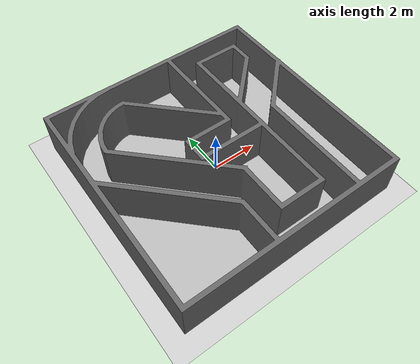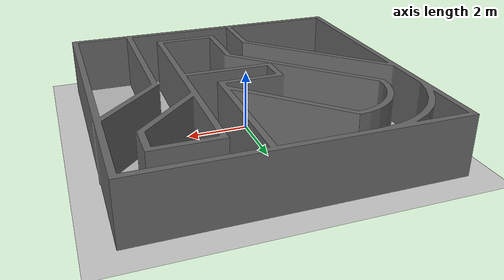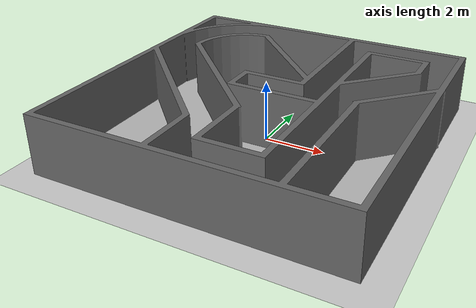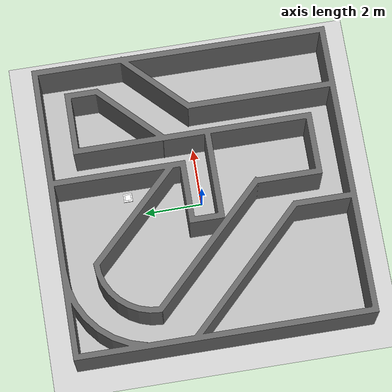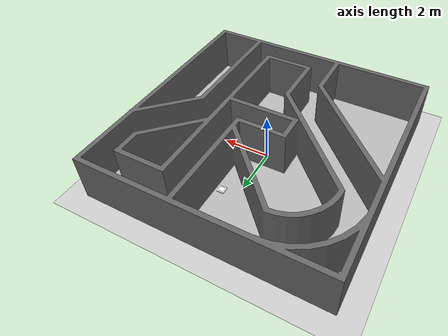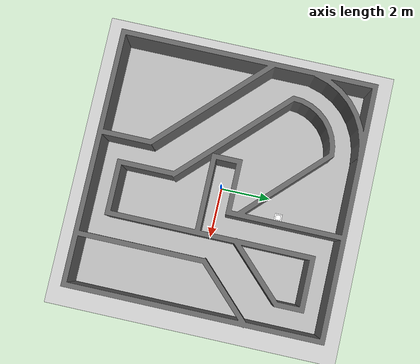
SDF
<?xml version="1.0" ?>

<sdf version="1.8">
  <world name="default">

    <model name="track">
        <static>true</static>

        <link name="black_track">
            <pose>0 0 0 0 0 0</pose>
            <collision name="collision">
            <geometry><box><size>10 10 0.1</size></box></geometry>
            </collision>
            <visual name="visual">
            <geometry><box><size>10 10 0.1</size></box></geometry>
            </visual>
        </link>
    </model>

    <model name="custom_maze">
        <static>true</static>
        <link name="maze_link">
            <pose>0 0 0 1.57 0 0</pose>
            <collision name="collision">
                <geometry>
                    <mesh><uri>model://my_maze/meshes/wall_maze.obj</uri></mesh>
                </geometry>
            </collision>
            <visual name="visual">
                <geometry>
                    <mesh><uri>model://my_maze/meshes/wall_maze.obj</uri></mesh>
                </geometry>
                <material>
                    <ambient>0.3 0.3 0.3 1</ambient>
                    <diffuse>0.4 0.4 0.4 1</diffuse>
                </material>
            </visual>
        </link>
    </model>

    <plugin
    filename="gz-sim-physics-system"
    name="gz::sim::systems::Physics">
    </plugin>

    <plugin
    filename="gz-sim-scene-broadcaster-system"
    name="gz::sim::systems::SceneBroadcaster">
    </plugin>

    <plugin
    filename="gz-sim-user-commands-system"
    name="gz::sim::systems::UserCommands">
    </plugin>

    <plugin
    filename="gz-sim-sensors-system"
    name="gz::sim::systems::Sensors">
    <render_engine>ogre2</render_engine>
    </plugin>

    <light name="sun" type="directional">
    <cast_shadows>true</cast_shadows>
    <pose>0 0 10 0 0 0</pose>
    <diffuse>0.8 0.8 0.8 1</diffuse>
    <specular>0.2 0.2 0.2 1</specular>
    <attenuation>
        <range>1000</range>
        <constant>0.9</constant>
        <linear>0.01</linear>
        <quadratic>0.001</quadratic>
    </attenuation>
    <direction>-0.5 0.1 -0.9</direction>
    </light>

    <model name="ground_plane">
    <static>true</static>
    <link name="link">
        <collision name="collision">
        <geometry>
            <plane>
            <normal>0 0 1</normal>
            <size>100 100</size>
            </plane>
        </geometry>
        </collision>
        <visual name="visual">
        <geometry>
            <plane>
            <normal>0 0 1</normal>
            <size>100 100</size>
            </plane>
        </geometry>
        <material>
            <ambient>0.8 0.8 0.8 1</ambient>
            <diffuse>0.8 0.8 0.8 1</diffuse>
            <specular>0.8 0.8 0.8 1</specular>
        </material>
        </visual>
    </link>
    </model>

    <include>
    <uri>model://aruco_4</uri>
    <pose>0.8 2.5 0.05 0 -1.57 0</pose>
    </include>

  </world>
</sdf>

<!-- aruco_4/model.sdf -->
<sdf version="1.8">
  <model name="aruco_4">
    <static>true</static>
    <link name="link">
      <visual name="board_visual">
        <pose>0.0 0 0.15 0 0 0</pose>
        <geometry>
          <box>
            <size>0.1 0.3 0.3</size>
          </box>
        </geometry>
        <material>
          <ambient>1 1 1 1</ambient>
          <diffuse>1 1 1 1</diffuse>
        </material>
      </visual>
      <collision name="board_collision">
        <pose>0.0 0 0.15 0 0 0</pose>
        <geometry>
          <box>
            <size>0.1 0.3 0.3</size>
          </box>
        </geometry>
      </collision>

      <visual name="marker_visual">
        <pose>0.06 0 0.15 0 0 0</pose>
        <geometry>
          <box>
            <size>0.001 0.2 0.2</size>
          </box>
        </geometry>
        <material>
          <diffuse>1 1 1 1</diffuse>
          <pbr>
            <metal>
              <albedo_map>textures/marker_50.png</albedo_map>
            </metal>
          </pbr>
        </material>
      </visual>
    </link>
  </model>
</sdf>
